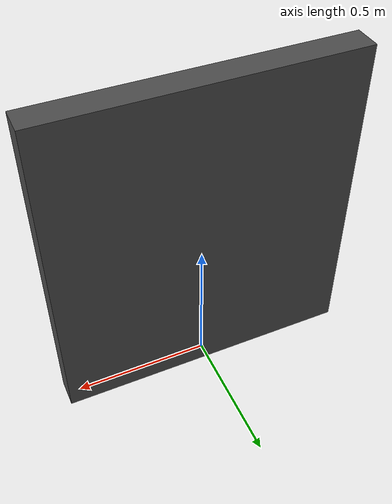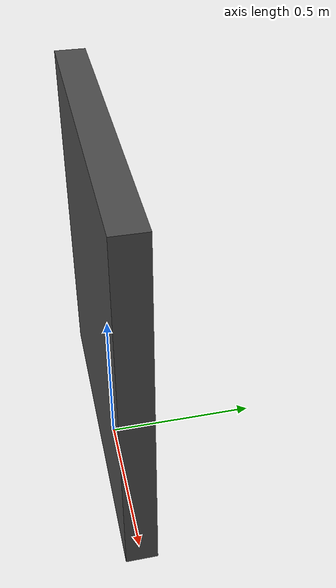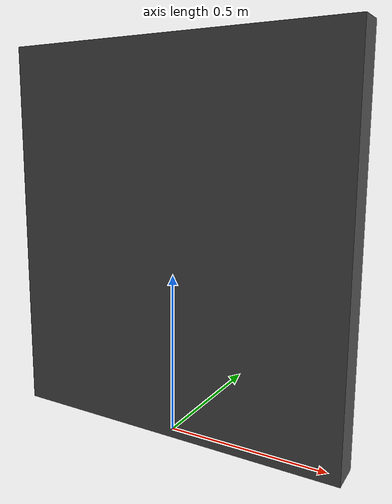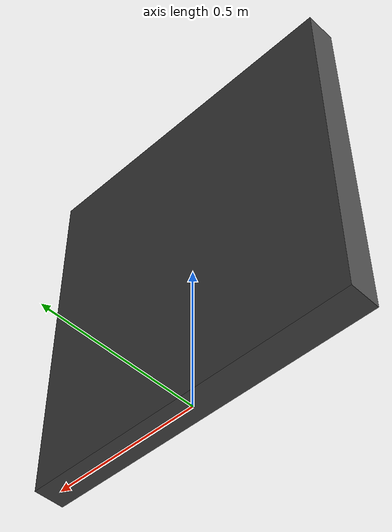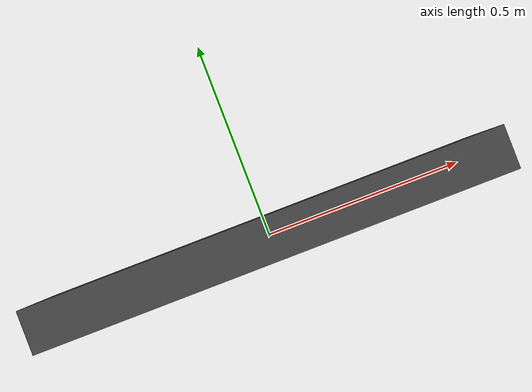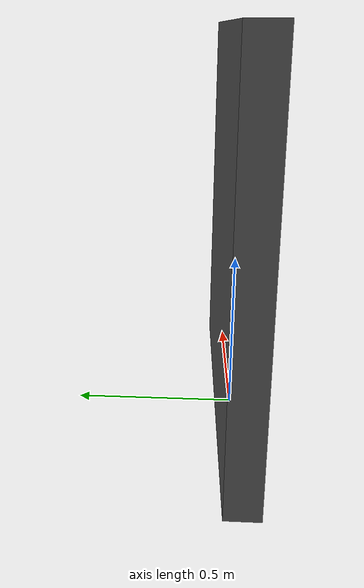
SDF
<?xml version="1.0" ?>
<sdf version="1.9">
  <model name="sim_wall_panel">
    <link name="body">
      <inertial>
        <mass>50.0</mass>
        <pose>0 0 0.6 0 0 0</pose>
        <inertia><ixx>6.0</ixx><ixy>0</ixy><ixz>0</ixz><iyy>6.0</iyy><iyz>0</iyz><izz>5.0</izz></inertia>
      </inertial>

      <collision name="collision">
        <pose>0 0 0.6 0 0 0</pose>
        <geometry><box><size>1.1 0.1 1.2</size></box></geometry>
      </collision>
      <visual name="visual">
        <pose>0 0 0.6 0 0 0</pose>
        <geometry><box><size>1.1 0.1 1.2</size></box></geometry>
        <material><ambient>0.3 0.3 0.3 1</ambient><diffuse>0.3 0.3 0.3 1</diffuse></material>
      </visual>
    </link>

    <plugin filename="ignition-gazebo-velocity-control-system"
            name="ignition::gazebo::systems::VelocityControl">
      <topic>cmd_vel</topic>
    </plugin>

    <plugin filename="ignition-gazebo-pose-publisher-system"
            name="ignition::gazebo::systems::PosePublisher">
      <publish_link_pose>false</publish_link_pose>
      <publish_collision_pose>false</publish_collision_pose>
      <publish_visual_pose>false</publish_visual_pose>
      <publish_model_pose>true</publish_model_pose>
      <publish_nested_model_pose>false</publish_nested_model_pose>
      <use_pose_vector_msg>false</use_pose_vector_msg>
      <update_frequency>50</update_frequency>
    </plugin>
  </model>
</sdf>
